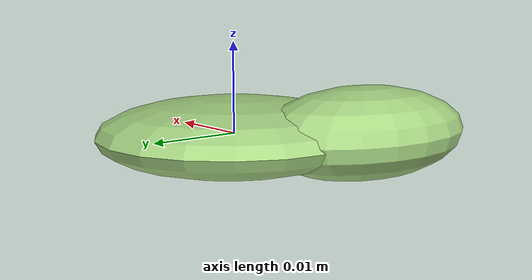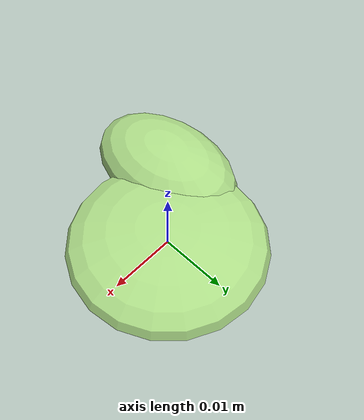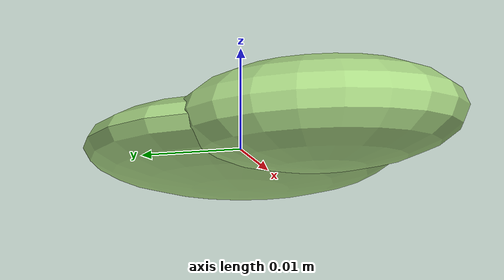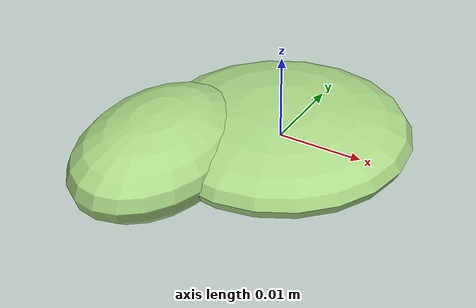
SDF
<?xml version="1.0" ?>
<!-- |    This document was autogenerated by xmacro from data/veggie_template/veggie_base.sdf.xacro  | -->
<!-- |    EDITING THIS FILE BY HAND IS NOT RECOMMENDED                                               | -->
<sdf version="1.8">
	<!-- Parameters -->
	<!-- Base -->
	<!-- Joint 0 -->
	<!-- Link 1 -->
	<!-- Joint 1 -->
	<!-- Link 2 -->
	<!-- Primitives -->
	<!-- All dimensions are half -->
	<!-- Object -->
	<model name="veggie">
		<!-- link0 -->
		<link name="link0">
			<inertial>
				<mass>0.0037858080334847114</mass>
				<inertia>
					<ixx>1.825842602435298e-07</ixx>
					<ixy>0</ixy>
					<ixz>0</ixz>
					<iyy>1.8141316368861097e-07</iyy>
					<iyz>0</iyz>
					<izz>3.393678138370742e-07</izz>
				</inertia>
			</inertial>
			<visual name="link0_visual">
				<pose>0 0 0 0 0 0</pose>
				<geometry>
					<ellipsoid>
						<radii>0.014944294038696383 0.014995953364569315 0.004032918805271282</radii>
					</ellipsoid>
				</geometry>
				<material>
					<ambient>0.659 0.839 0.514 1</ambient>
					<diffuse>0.659 0.839 0.514 1</diffuse>
					<specular>0 0 0 0</specular>
					<emissive>0 0 0 1</emissive>
				</material>
			</visual>
			<collision name="link0_collision">
				<pose>0 0 0 0 0 0 </pose>
				<geometry>
					<ellipsoid>
						<radii>0.014944294038696383 0.014995953364569315 0.004032918805271282</radii>
					</ellipsoid>
				</geometry>
			</collision>
		</link>
		<!-- link1 -->
		<joint name="joint0" type="fixed">
			<pose relative_to="link0">-0.00988770286999223 -0.010085782205192129 0.0004240288080635073 0.0 0.0 0.0</pose>
			<parent>link0</parent>
			<child>link1</child>
		</joint>
		<link name="link1">
			<pose relative_to="joint0">0 0 0 0 0 0</pose>
			<inertial>
				<mass>0.0023546557607842943</mass>
				<inertia>
					<ixx>9.23081319593459e-08</ixx>
					<ixy>0</ixy>
					<ixz>0</ixz>
					<iyy>4.692444557551356e-08</iyy>
					<iyz>0</iyz>
					<izz>1.1612355280639283e-07</izz>
				</inertia>
			</inertial>
			<visual name="link1_visual">
				<pose>0 0 0 0 0 0</pose>
				<geometry>
					<ellipsoid>
						<radii>0.008666393608726048 0.013094903092781027 0.004953328156433179</radii>
					</ellipsoid>
				</geometry>
				<material>
					<ambient>0.659 0.839 0.514 1</ambient>
					<diffuse>0.659 0.839 0.514 1</diffuse>
					<specular>0 0 0 0</specular>
					<emissive>0 0 0 1</emissive>
				</material>
			</visual>
			<collision name="link1_collision">
				<pose>0 0 0 0 0 0 </pose>
				<geometry>
					<ellipsoid>
						<radii>0.008666393608726048 0.013094903092781027 0.004953328156433179</radii>
					</ellipsoid>
				</geometry>
			</collision>
		</link>
		<!-- link2 -->
	</model>
</sdf>
